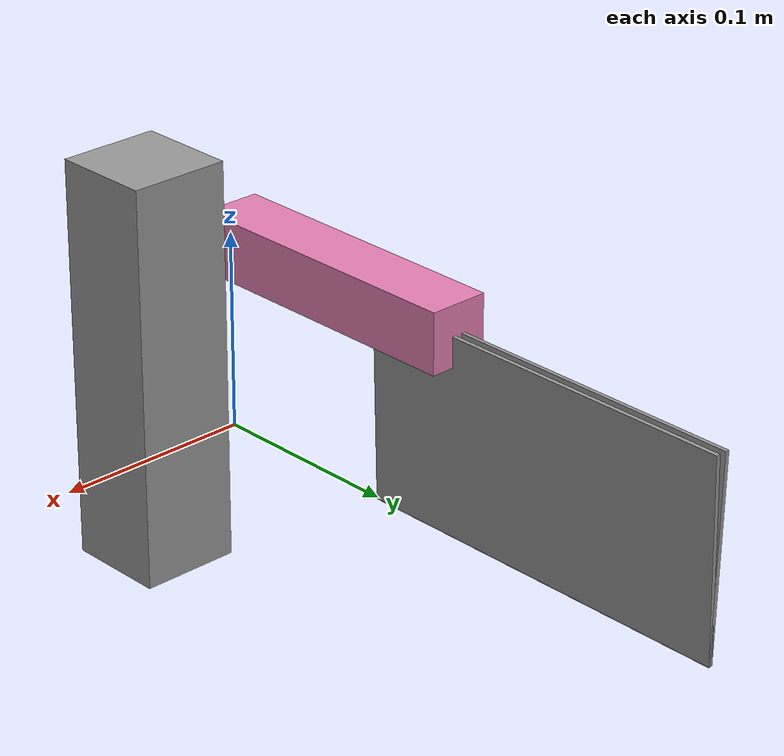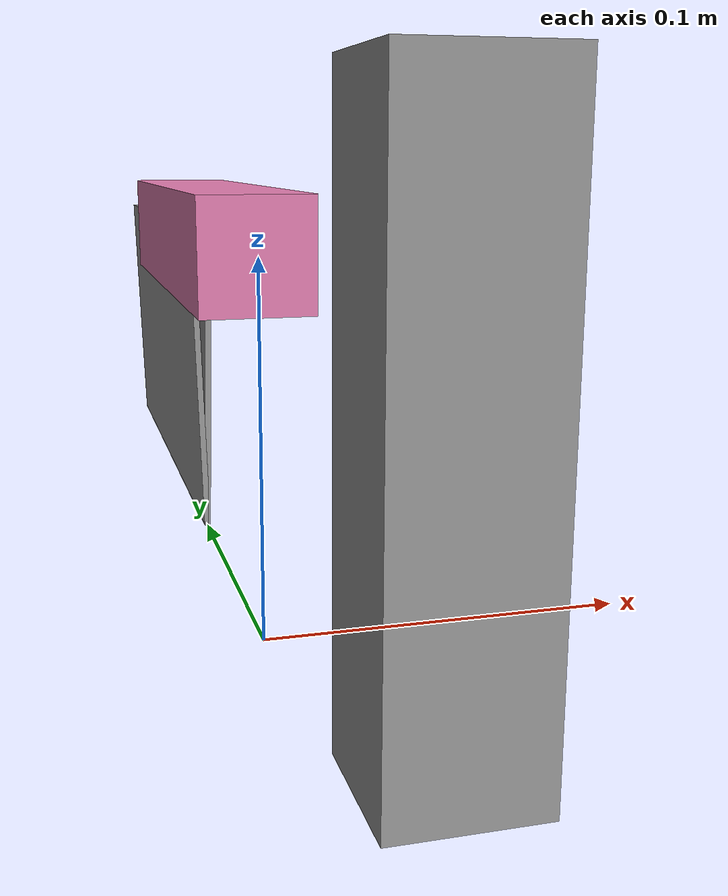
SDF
<?xml version='1.0'?>
<sdf version='1.0'>
  <model name='guillotine'>
    <link name='base'>
      <pose frame=''>0 0 0 0 0 0</pose>
      <inertial>
        <mass>1.0</mass>
        <inertia>
          <ixx>1.0</ixx>
          <ixy>0</ixy>
          <ixz>0</ixz>
          <iyy>1.0</iyy>
          <iyz>0</iyz>
          <izz>1.0</izz>
        </inertia>
        <pose frame=''>0 0.0 0 0 -0 0</pose>
      </inertial>
      <self_collide>0</self_collide>
      <kinematic>0</kinematic>
      <visual name='visual_left'>
        <pose frame=''>0.05 0 .05 0 -0 0</pose>
        <geometry>
          <box>
            <size>0.05 0.05 0.2</size>
          </box>
        </geometry>
        <material>
          <lighting>1</lighting>
          <script>
            <uri>file://media/materials/scripts/gazebo.material</uri>
            <name>Gazebo/Grey</name>
          </script>
          <ambient>0.3 0.3 0.3 1</ambient>
          <diffuse>0.7 0.7 0.7 1</diffuse>
          <specular>0.01 0.01 0.01 1</specular>
          <emissive>0 0 0 1</emissive>
          <shader type='vertex'>
            <normal_map>__default__</normal_map>
          </shader>
        </material>
        <cast_shadows>1</cast_shadows>
        <transparency>0</transparency>
      </visual>
      <collision name='visual_left'>
        <laser_retro>0</laser_retro>
        <max_contacts>10</max_contacts>
        <pose frame=''>0.05 0 .05 0 -0 0</pose>
        <geometry>
          <box>
            <size>0.05 0.05 0.2</size>
          </box>
        </geometry>
      </collision>
    </link>
    <link name='blade'>
      <pose frame=''>0.0 0.0 0.0 0 0 0</pose>
      <inertial>
        <mass>0.25</mass>
        <inertia>
          <ixx>0.16</ixx>
          <ixy>0</ixy>
          <ixz>0</ixz>
          <iyy>0.16</iyy>
          <iyz>0</iyz>
          <izz>0.16</izz>
        </inertia>
        <pose frame=''>0 0 0 0 -0 0</pose>
      </inertial>
      <self_collide>0</self_collide>
      <kinematic>0</kinematic>
      <visual name='cutting_blade1'>
        <pose frame=''>-0.0013578 0.2 0.05 0 -0.0272665 0</pose>
        <geometry>
          <box>
            <size>0.002 0.20 0.10</size>
          </box>
        </geometry>
        <material>
          <lighting>1</lighting>
          <script>
            <uri>file://media/materials/scripts/gazebo.material</uri>
            <name>Gazebo/Grey</name>
          </script>
          <ambient>0.7 0.7 0.7 1</ambient>
          <diffuse>0.9 0.9 0.95 1</diffuse>
          <specular>0.01 0.01 0.01 1</specular>
          <emissive>0 0 0 1</emissive>
          <shader type='vertex'>
            <normal_map>__default__</normal_map>
          </shader>
        </material>
        <cast_shadows>1</cast_shadows>
        <transparency>0</transparency>
      </visual>
      <visual name='cutting_blade2'>
        <pose frame=''>0.0013578 0.2 0.05 0 0.0272665 0</pose>
        <geometry>
          <box>
            <size>0.002 0.20 0.10</size>
          </box>
        </geometry>
        <material>
          <lighting>1</lighting>
          <script>
            <uri>file://media/materials/scripts/gazebo.material</uri>
            <name>Gazebo/Grey</name>
          </script>
          <ambient>0.7 0.7 0.7 1</ambient>
          <diffuse>0.9 0.9 0.95 1</diffuse>
          <specular>0.01 0.01 0.01 1</specular>
          <emissive>0 0 0 1</emissive>
          <shader type='vertex'>
            <normal_map>__default__</normal_map>
          </shader>
        </material>
        <cast_shadows>1</cast_shadows>
        <transparency>0</transparency>
      </visual>
      <collision name='cutting_blade_collision1'>
        <laser_retro>0</laser_retro>
        <max_contacts>10</max_contacts>
        <pose frame=''>-0.0013578 0.2 0.05 0 -0.0272665 0</pose>
        <geometry>
          <box>
            <size>0.002 0.20 0.10</size>
          </box>
        </geometry>
      </collision>
      <collision name='cutting_blade_collision2'>
        <laser_retro>0</laser_retro>
        <max_contacts>10</max_contacts>
        <pose frame=''>0.0013578 0.2 0.05 0 0.0272665 0</pose>
        <geometry>
          <box>
            <size>0.002 0.20 0.10</size>
          </box>
        </geometry>
      </collision>
      <visual name='blade_guard'>
        <pose frame=''>0 0.075 0.1 0 -0 0</pose>
        <geometry>
          <box>
            <size>0.03 0.15 0.03</size>
          </box>
        </geometry>
        <material>
          <lighting>1</lighting>
          <script>
            <uri>file://media/materials/scripts/gazebo.material</uri>
            <name>Gazebo/Grey</name>
          </script>
          <ambient>0.7 0.7 0.7 1</ambient>
          <diffuse>0.9 0.5 0.7 1</diffuse>
          <specular>0.01 0.01 0.01 1</specular>
          <emissive>0 0 0 1</emissive>
          <shader type='vertex'>
            <normal_map>__default__</normal_map>
          </shader>
        </material>
        <cast_shadows>1</cast_shadows>
        <transparency>0</transparency>
      </visual>
      <collision name='blade_guard_collision'>
        <laser_retro>0</laser_retro>
        <max_contacts>10</max_contacts>
        <pose frame=''>0 0.15 0.1 0 -0 0</pose>
        <geometry>
          <box>
            <size>0.03 0.15 0.03</size>
          </box>
        </geometry>
      </collision>
    </link>
    <joint name='knife_joint' type='revolute'>
      <parent>base</parent>
      <child>blade</child>
      <pose frame=''>0 0 0.1 0 -0 0</pose>
      <axis>
        <xyz>1 0 0</xyz>
        <use_parent_model_frame>0</use_parent_model_frame>
        <!-- Drake attaches an actuator to all and only joints with a nonzero
             effort limit. -->
        <limit>
          <lower>-1.57</lower>
          <upper>1.57</upper>
          <effort>0.0</effort>
        </limit>
      </axis>
    </joint>
  </model>
</sdf>
